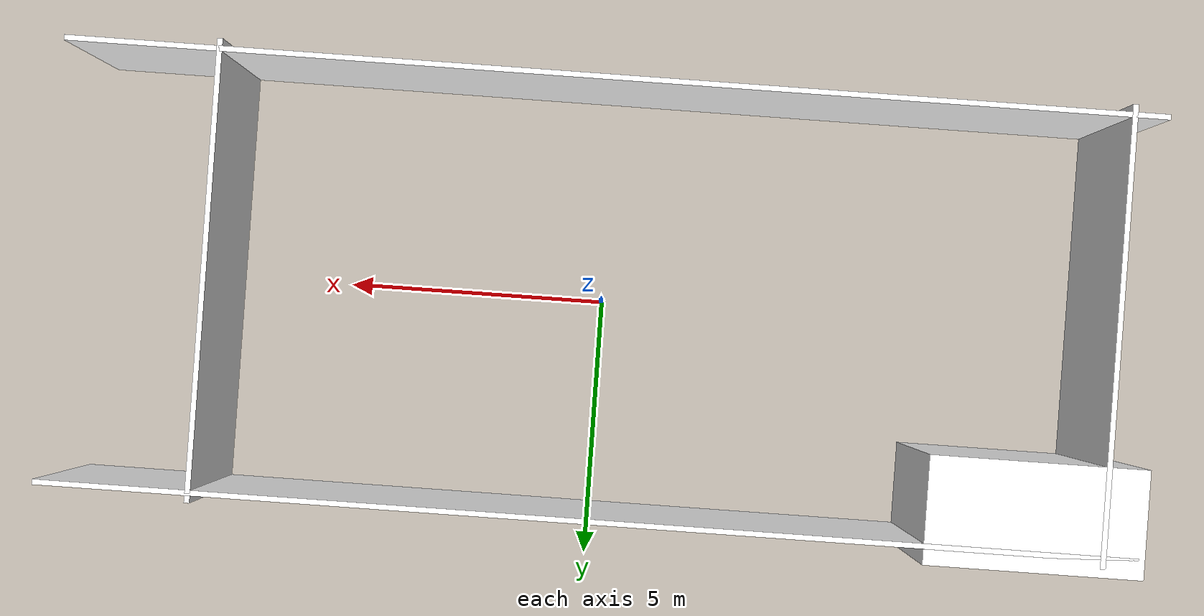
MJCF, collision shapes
<mujoco model="gear_factory">
  <statistic meansize="0.1"/>
  <visual>
    <headlight diffuse="0.6 0.6 0.6" ambient="0.1 0.1 0.1" specular="0.9 0.9 0.9"/>
    <rgba haze="0.15 0.25 0.35 1"/>
    <global azimuth="-140" elevation="-20"/>
  </visual>
  <default>
    <default class="visual">
      <geom group="1" type="mesh" contype="0" conaffinity="0" density="100"/>
    </default>
    <default class="collision">
      <geom group="0" rgba="1 1 1 0.25"/>
    </default>
  </default>
  <asset>
    <texture type="2d" name="Fence_Metal_AO" file="textures/Fence_Metal_AO.png"/>
    <material name="Fence_Glass" texture="Fence_Metal_AO" specular="0.5" shininess="0.81" rgba="0.2 0.2 0.2 0.5"/>
    <material name="Fence_Metal" texture="Fence_Metal_AO" specular="0.5" shininess="0.64"/>
    <material name="Fence_Plastic" texture="Fence_Metal_AO" specular="0.5" shininess="0.81"/>
    <texture type="2d" name="Light_Curtain" file="textures/Light_Curtain.png"/>
    <material name="Light_Curtain" texture="Light_Curtain" specular="0.5" shininess="0.25"/>
    <texture type="2d" name="Laser_Beam" file="textures/Laser_Beam.png" nchannel="4"/>
    <material name="Material.001" texture="Laser_Beam" specular="0.5" shininess="0.25" rgba="1 1 1 0.95"/>
    <texture type="2d" name="Rack_3@Medium" file="textures/Rack_3@Medium.png" nchannel="4"/>
    <material name="Rack_3" texture="Rack_3@Medium" specular="0.5" shininess="0.25" rgba="1 1 1 0.9"/>
    <texture type="2d" name="Rack_4@Medium" file="textures/Rack_4@Medium.png" nchannel="4"/>
    <material name="Rack_4" texture="Rack_4@Medium" rgba="1 1 1 0.9"/>
    <texture type="2d" name="Robots_1@Medium" file="textures/Robots_1@Medium.png" nchannel="4"/>
    <material name="Robots_1" texture="Robots_1@Medium" rgba="1 1 1 0.9"/>
    <texture type="2d" name="Robots_1_Fence@Medium" file="textures/Robots_1_Fence@Medium.png" nchannel="4"/>
    <material name="Robots_1_Fence" texture="Robots_1_Fence@Medium" rgba="1 1 1 0.9"/>
    <texture type="2d" name="Robots_2@Medium" file="textures/Robots_2@Medium.png" nchannel="4"/>
    <material name="Robots_2" texture="Robots_2@Medium" rgba="1 1 1 0.9"/>
    <texture type="2d" name="Robots_2_Fence@Medium" file="textures/Robots_2_Fence@Medium.png" nchannel="4"/>
    <material name="Robots_2_Fence" texture="Robots_2_Fence@Medium" rgba="1 1 1 0.9"/>
    <texture type="2d" name="Steel_ASTM_AO" file="textures/Steel_ASTM_AO.png"/>
    <material name="Steel_ASTM" texture="Steel_ASTM_AO"/>
    <texture type="2d" name="factory@1024" file="textures/factory@1024.png"/>
    <material name="Walls" texture="factory@1024"/>
    <texture type="2d" name="mtl-base_color@Small" file="textures/mtl-base_color@Small.png"/>
    <material name="YellowPaint_World.001" texture="mtl-base_color@Small" rgba="1 1 1 0.9"/>
    <mesh file="meshes/gear_factory_0.obj" name="gear_factory_0"/>
    <mesh file="meshes/gear_factory_1.obj" name="gear_factory_1"/>
    <mesh file="meshes/gear_factory_2.obj" name="gear_factory_2"/>
    <mesh file="meshes/gear_factory_3.obj" name="gear_factory_3"/>
    <mesh file="meshes/gear_factory_4.obj" name="gear_factory_4"/>
    <mesh file="meshes/gear_factory_5.obj" name="gear_factory_5"/>
    <mesh file="meshes/gear_factory_6.obj" name="gear_factory_6"/>
    <mesh file="meshes/gear_factory_7.obj" name="gear_factory_7"/>
    <mesh file="meshes/gear_factory_8.obj" name="gear_factory_8"/>
    <mesh file="meshes/gear_factory_9.obj" name="gear_factory_9"/>
    <mesh file="meshes/gear_factory_10.obj" name="gear_factory_10"/>
    <mesh file="meshes/gear_factory_11.obj" name="gear_factory_11"/>
    <mesh file="meshes/gear_factory_walls.obj" name="gear_factory_walls"/>
    <mesh file="meshes/gear_factory_poles.obj" name="gear_factory_poles"/>
    <mesh file="meshes/paint_lines.obj" name="paint_lines"/>
    <texture type="skybox" builtin="flat" rgb1="1 1 1" rgb2="1 1 1" width="512" height="3072"/>
    <texture type="2d" name="T_Floor_A1_Albedo" file="textures/T_Floor_A1_Albedo.png"/>
    <material name="T_Floor_A1_Albedo" texture="T_Floor_A1_Albedo" texuniform="true" texrepeat="1 1" reflectance="0.05"/>
  </asset>
  <worldbody>
    <light pos="1 0 3.5" dir="0 0 -1" directional="true" castshadow="false"/>
    <body name="gear_factory">
      <geom name="floor" group="1" size="0 0 0.05" type="plane" material="T_Floor_A1_Albedo"/>
      <geom mesh="gear_factory_0" material="Material.001" class="visual"/>
      <geom mesh="gear_factory_1" material="Light_Curtain" class="visual"/>
      <geom mesh="gear_factory_2" material="Fence_Plastic" class="visual"/>
      <geom mesh="gear_factory_3" material="Fence_Glass" class="visual"/>
      <geom mesh="gear_factory_4" material="Fence_Metal" class="visual"/>
      <geom mesh="gear_factory_5" material="Robots_2" class="visual"/>
      <geom mesh="gear_factory_6" material="Robots_2_Fence" class="visual"/>
      <geom mesh="gear_factory_7" material="Robots_1_Fence" class="visual"/>
      <geom mesh="gear_factory_8" material="Robots_1" class="visual"/>
      <geom mesh="gear_factory_9" material="Rack_4" class="visual"/>
      <geom mesh="gear_factory_10" material="Rack_3" class="visual"/>
      <geom mesh="gear_factory_walls" material="Walls" class="visual"/>
      <geom mesh="gear_factory_poles" material="Steel_ASTM" class="visual"/>
      <geom mesh="paint_lines" material="YellowPaint_World.001" class="visual"/>
      <geom name="collision_wall_1" type="box" pos="0 4.017 1.4" size="10 0.05 1.4" class="collision"/>
      <geom name="collision_wall_2" type="box" pos="0 -4.017 1.4" size="10 0.05 1.4" class="collision"/>
      <geom name="collision_wall_3" type="box" pos="7.19696 0 1.4" size="0.05 4.2 1.4" class="collision"/>
      <geom name="collision_wall_4" type="box" pos="-9.3586 0 1.4" size="0.05 4.2 1.4" class="collision"/>
      <geom name="collision_wall_5" type="box" pos="-8.10696 3.35696 1.4" size="2 1 1.4" class="collision"/>
    </body>
    <!-- front view -->
    <camera mode="fixed" name="frontview" pos="4.6 0 1.45" quat="0.56 0.43 0.43 0.56"/>
    <!-- bird view -->
    <camera mode="fixed" name="birdview" pos="-0.2 0 4.0" quat="0.7071 0 0 0.7071"/>
    <!-- agent view -->
    <camera mode="fixed" name="agentview" pos="0.5 0 1.45" quat="0.653 0.271 0.271 0.653"/>
    <!-- side view -->
    <camera mode="fixed" name="sideview" pos="-0.05651774593317116 1.2761224129427358 1.4879572214102434" quat="0.009905065491771751 0.006877963156909582 0.5912228352893879 0.806418094001364"/>
  </worldbody>
</mujoco>
